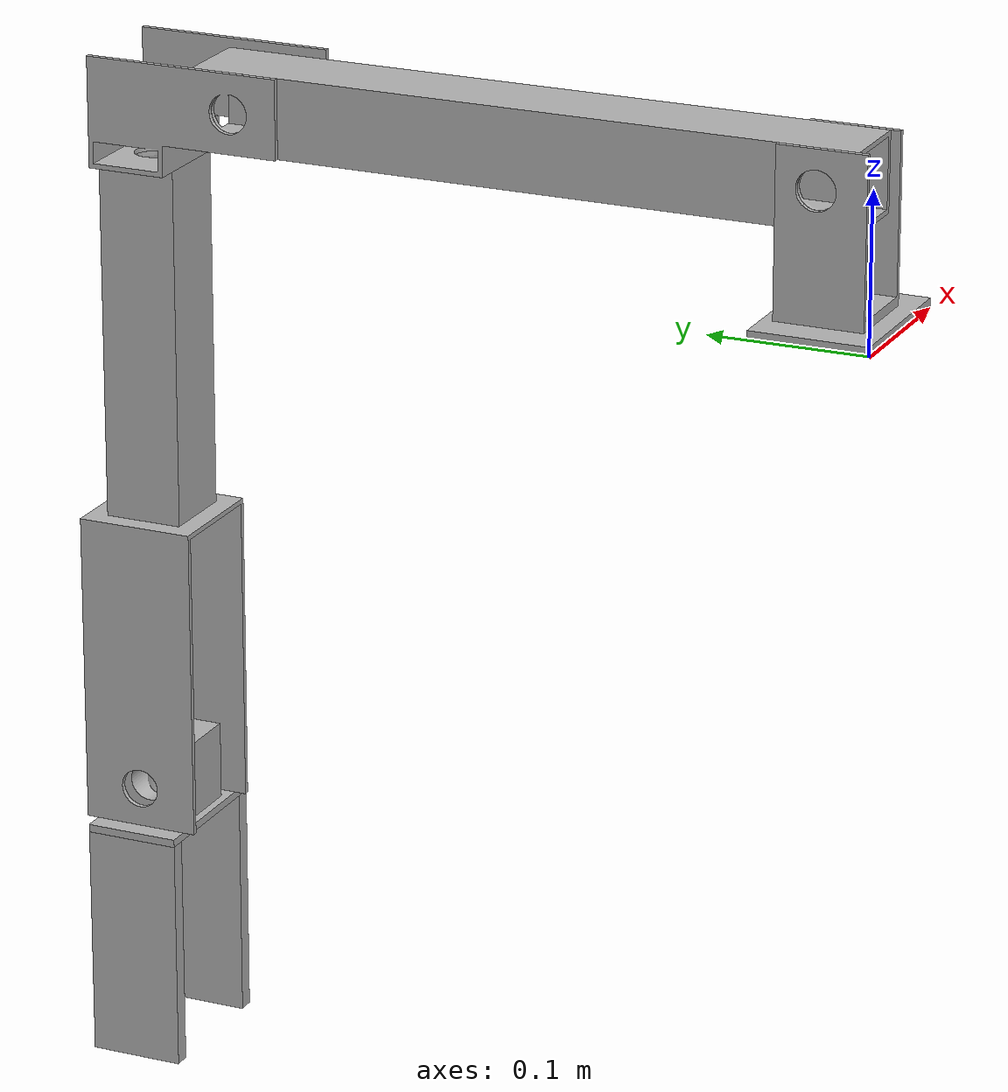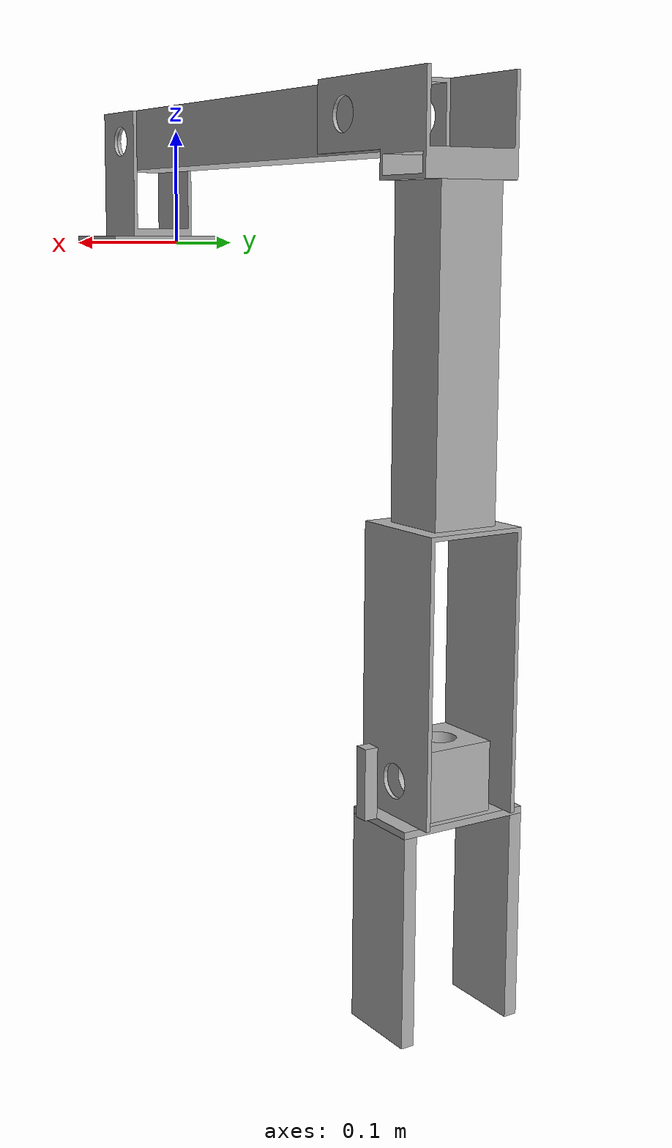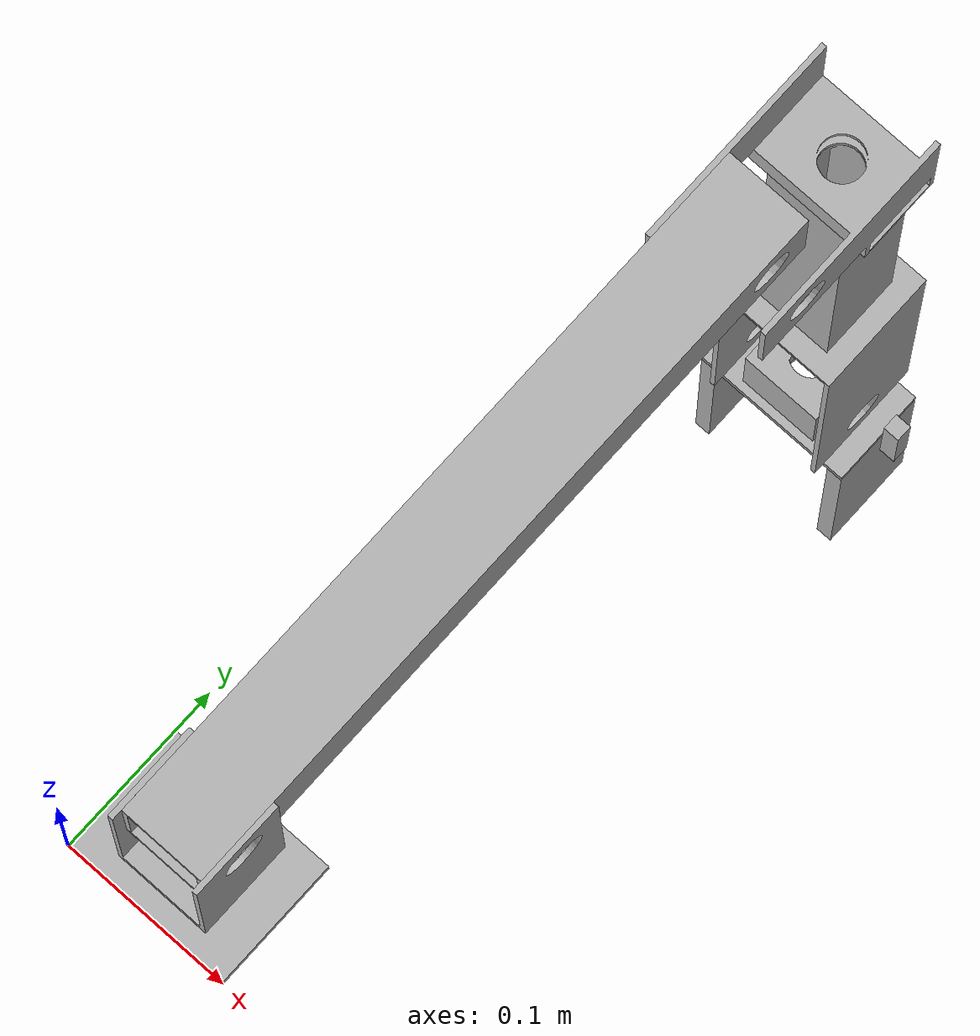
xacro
<?xml version="1.0" ?>
<robot name="bruh_with_EE" xmlns:xacro="http://www.ros.org/wiki/xacro">

<xacro:include filename="$(find rover)/rover/simulation/urdfs/bruh_with_EE_info/materials.xacro" />
<xacro:include filename="$(find rover)/rover/simulation/urdfs/bruh_with_EE_info/bruh_with_EE.gazebo" />
<link name="base_link">
  <inertial>
    <origin xyz="0.049999999999908465 0.03732491617294113 0.003125" rpy="0 0 0"/>
    <mass value="0.3438852516301944"/>
    <inertia ixx="0.000173" iyy="0.000307" izz="0.000477" ixy="0.0" iyz="0.0" ixz="0.0"/>
  </inertial>
  <visual>
    <origin xyz="0 0 0" rpy="0 0 0"/>
    <geometry>
      <mesh filename="package://rover/rover/simulation/meshes/BRUH_EE/base_link.stl" scale="0.001 0.001 0.001"/>
    </geometry>
    <material name="silver"/>
  </visual>
  <collision>
    <origin xyz="0 0 0" rpy="0 0 0"/>
    <geometry>
      <mesh filename="package://rover/rover/simulation/meshes/BRUH_EE/base_link.stl" scale="0.001 0.001 0.001"/>
    </geometry>
  </collision>
</link>

<link name="Link_2">
  <inertial>
    <origin xyz="0.02500000000000001 -3.469446951953614e-17 0.18750000000000036" rpy="0 0 0"/>
    <mass value="1.9066669876353899"/>
    <inertia ixx="0.028446" iyy="0.028422" izz="0.00141" ixy="0.0" iyz="0.0" ixz="0.0"/>
  </inertial>
  <visual>
    <origin xyz="-0.025 -0.043125 -0.0875" rpy="0 0 0"/>
    <geometry>
      <mesh filename="package://rover/rover/simulation/meshes/BRUH_EE/Link_2_1.stl" scale="0.001 0.001 0.001"/>
    </geometry>
    <material name="silver"/>
  </visual>
  <collision>
    <origin xyz="-0.025 -0.043125 -0.0875" rpy="0 0 0"/>
    <geometry>
      <mesh filename="package://rover/rover/simulation/meshes/BRUH_EE/Link_2_1.stl" scale="0.001 0.001 0.001"/>
    </geometry>
  </collision>
</link>

<link name="Link_3">
  <inertial>
    <origin xyz="0.03430362109974345 -0.04944582134444816 0.014912670037228792" rpy="0 0 0"/>
    <mass value="0.4940349563853918"/>
    <inertia ixx="0.000813" iyy="0.000699" izz="0.001065" ixy="2e-06" iyz="0.000148" ixz="-1e-06"/>
  </inertial>
  <visual>
    <origin xyz="-0.025 -0.043125 -0.4625" rpy="0 0 0"/>
    <geometry>
      <mesh filename="package://rover/rover/simulation/meshes/BRUH_EE/Link_3_1.stl" scale="0.001 0.001 0.001"/>
    </geometry>
    <material name="silver"/>
  </visual>
  <collision>
    <origin xyz="-0.025 -0.043125 -0.4625" rpy="0 0 0"/>
    <geometry>
      <mesh filename="package://rover/rover/simulation/meshes/BRUH_EE/Link_3_1.stl" scale="0.001 0.001 0.001"/>
    </geometry>
  </collision>
</link>

<link name="Link_4">
  <inertial>
    <origin xyz="-7.868329075064878e-05 4.85722573273506e-17 0.19765089570473438" rpy="0 0 0"/>
    <mass value="1.9294963540078034"/>
    <inertia ixx="0.028758" iyy="0.028194" izz="0.002163" ixy="0.0" iyz="-0.0" ixz="-1.2e-05"/>
  </inertial>
  <visual>
    <origin xyz="-0.059375 0.026425 -0.5075" rpy="0 0 0"/>
    <geometry>
      <mesh filename="package://rover/rover/simulation/meshes/BRUH_EE/Link_4_1.stl" scale="0.001 0.001 0.001"/>
    </geometry>
    <material name="silver"/>
  </visual>
  <collision>
    <origin xyz="-0.059375 0.026425 -0.5075" rpy="0 0 0"/>
    <geometry>
      <mesh filename="package://rover/rover/simulation/meshes/BRUH_EE/Link_4_1.stl" scale="0.001 0.001 0.001"/>
    </geometry>
  </collision>
</link>

<link name="Link_5">
  <inertial>
    <origin xyz="-0.00732499999999995 0.029675000000000396 5.551115123125783e-16" rpy="0 0 0"/>
    <mass value="0.6776848594164601"/>
    <inertia ixx="0.00032" iyy="0.000352" izz="0.000352" ixy="-0.0" iyz="0.0" ixz="0.0"/>
  </inertial>
  <visual>
    <origin xyz="-0.0667 0.0561 -0.910625" rpy="0 0 0"/>
    <geometry>
      <mesh filename="package://rover/rover/simulation/meshes/BRUH_EE/Link_5_1.stl" scale="0.001 0.001 0.001"/>
    </geometry>
    <material name="silver"/>
  </visual>
  <collision>
    <origin xyz="-0.0667 0.0561 -0.910625" rpy="0 0 0"/>
    <geometry>
      <mesh filename="package://rover/rover/simulation/meshes/BRUH_EE/Link_5_1.stl" scale="0.001 0.001 0.001"/>
    </geometry>
  </collision>
</link>

<link name="Link_1"> <!-- turntable -->
  <inertial>
    <origin xyz="-8.21703816100694e-14 -0.00019647994583754658 0.036488404975619185" rpy="0 0 0"/>
    <mass value="0.3830463821666405"/>
    <inertia ixx="0.000547" iyy="0.000653" izz="0.000329" ixy="0.0" iyz="3e-06" ixz="-0.0"/>
  </inertial>
  <visual>
    <origin xyz="-0.05 -0.04 -0.00625" rpy="0 0 0"/>
    <geometry>
      <mesh filename="package://rover/rover/simulation/meshes/BRUH_EE/Link_1_1.stl" scale="0.001 0.001 0.001"/>
    </geometry>
    <material name="silver"/>
  </visual>
  <collision>
    <origin xyz="-0.05 -0.04 -0.00625" rpy="0 0 0"/>
    <geometry>
      <mesh filename="package://rover/rover/simulation/meshes/BRUH_EE/Link_1_1.stl" scale="0.001 0.001 0.001"/>
    </geometry>
  </collision>
</link>

<link name="Link_6">
  <inertial>
    <origin xyz="1.1650402864660236e-13 3.920475055707584e-16 0.002500000000000502" rpy="0 0 0"/>
    <mass value="0.2162332013041555"/>
    <inertia ixx="0.000196" iyy="7e-05" izz="0.000265" ixy="-0.0" iyz="0.0" ixz="0.0"/>
  </inertial>
  <visual>
    <origin xyz="-0.059375 0.026425 -0.935625" rpy="0 0 0"/>
    <geometry>
      <mesh filename="package://rover/rover/simulation/meshes/BRUH_EE/Link_6_1.stl" scale="0.001 0.001 0.001"/>
    </geometry>
    <material name="silver"/>
  </visual>
  <collision>
    <origin xyz="-0.059375 0.026425 -0.935625" rpy="0 0 0"/>
    <geometry>
      <mesh filename="package://rover/rover/simulation/meshes/BRUH_EE/Link_6_1.stl" scale="0.001 0.001 0.001"/>
    </geometry>
  </collision>
</link>

<link name="Link_8">
  <inertial>
    <origin xyz="-0.029999999999999957 0.005000000000000393 0.07500000000000062" rpy="0 0 0"/>
    <mass value="0.7064999999999999"/>
    <inertia ixx="0.001331" iyy="0.001537" izz="0.000218" ixy="0.0" iyz="0.0" ixz="0.0"/>
  </inertial>
  <visual>
    <origin xyz="-0.089375 0.076425 -0.940625" rpy="0 0 0"/>
    <geometry>
      <mesh filename="package://rover/rover/simulation/meshes/BRUH_EE/Link_8_1.stl" scale="0.001 0.001 0.001"/>
    </geometry>
    <material name="silver"/>
  </visual>
  <collision>
    <origin xyz="-0.089375 0.076425 -0.940625" rpy="0 0 0"/>
    <geometry>
      <mesh filename="package://rover/rover/simulation/meshes/BRUH_EE/Link_8_1.stl" scale="0.001 0.001 0.001"/>
    </geometry>
  </collision>
</link>

<link name="Link_7">
  <inertial>
    <origin xyz="0.03000000000000004 -0.004999999999999619 0.0750000000000004" rpy="0 0 0"/>
    <mass value="0.7064999999999998"/>
    <inertia ixx="0.001331" iyy="0.001537" izz="0.000218" ixy="0.0" iyz="-0.0" ixz="-0.0"/>
  </inertial>
  <visual>
    <origin xyz="-0.029375 -0.023575 -0.940625" rpy="0 0 0"/>
    <geometry>
      <mesh filename="package://rover/rover/simulation/meshes/BRUH_EE/Link_7_1.stl" scale="0.001 0.001 0.001"/>
    </geometry>
    <material name="silver"/>
  </visual>
  <collision>
    <origin xyz="-0.029375 -0.023575 -0.940625" rpy="0 0 0"/>
    <geometry>
      <mesh filename="package://rover/rover/simulation/meshes/BRUH_EE/Link_7_1.stl" scale="0.001 0.001 0.001"/>
    </geometry>
  </collision>
</link>

<joint name="Joint_1" type="continuous">
  <origin xyz="0.05 0.04 0.00625" rpy="0 0 0"/>
  <parent link="base_link"/>
  <child link="Link_1"/>
  <axis xyz="0.0 0.0 1.0"/>
</joint>

<joint name="Joint_2" type="continuous">
  <origin xyz="-0.025 0.003125 0.08125" rpy="-1.57 0 0"/>
  <parent link="Link_1"/>
  <child link="Link_2"/>
  <axis xyz="1.0 0.0 -0.0"/>
</joint>

<joint name="Joint_3" type="continuous">
  <origin xyz="0.0 0.0 0.375" rpy="-1.57 0 0"/>
  <parent link="Link_2"/>
  <child link="Link_3"/>
  <axis xyz="1.0 -0.0 0.0"/>
</joint>

<joint name="Joint_4" type="continuous">
  <origin xyz="0.034375 -0.06955 0.045" rpy="0 0 -1.57"/>
  <parent link="Link_3"/>
  <child link="Link_4"/>
  <axis xyz="0.0 0.0 1.0"/>
</joint>

<joint name="Joint_5" type="continuous">
  <origin xyz="0.007325 -0.029675 0.403125" rpy="0 0 0"/>
  <parent link="Link_4"/>
  <child link="Link_5"/>
  <axis xyz="-0.0 1.0 -0.0"/>
</joint>

<joint name="Joint_6" type="continuous">
  <origin xyz="-0.007325 0.029675 0.025" rpy="0 0 0"/>
  <parent link="Link_5"/>
  <child link="Link_6"/>
  <axis xyz="-0.0 0.0 1.0"/>
</joint>

<joint name="Joint_7" type="prismatic">
  <origin xyz="0.03 -0.05 0.005" rpy="0 0 0"/>
  <parent link="Link_6"/>
  <child link="Link_8"/>
  <axis xyz="0.0 -1.0 0.0"/>
  <limit upper="0.0" lower="-0.04" effort="100" velocity="100"/>
</joint>

<joint name="Joint_8" type="prismatic">
  <origin xyz="-0.03 0.05 0.005" rpy="0 0 0"/>
  <parent link="Link_6"/>
  <child link="Link_7"/>
  <axis xyz="0.0 1.0 0.0"/>
  <limit upper="0.0" lower="-0.04" effort="100" velocity="100"/>
</joint>

<link name="camera_link">
  <visual>
    <geometry>
      <box size="0.01 0.01 0.05"/>
    </geometry>
    <material name="silver"/>
  </visual>
</link>

<joint name="camera_joint" type="fixed">
  <parent link="Link_4"/>
  <child link="camera_link"/>
  <origin xyz="0 0.06 0.4" rpy="0 0 0"/> <!--red green blue-->
</joint>

</robot>

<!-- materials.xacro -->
<robot name="bruh_with_EE" xmlns:xacro="http://www.ros.org/wiki/xacro" >

<material name="silver">
  <color rgba="0.700 0.700 0.700 1.000"/>
</material>

</robot>

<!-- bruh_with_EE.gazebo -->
<robot name="bruh_with_EE" xmlns:xacro="http://www.ros.org/wiki/xacro" >

<xacro:property name="body_color" value="Gazebo/Silver" />

<gazebo>
  <plugin name="control" filename="libgazebo_ros_control.so"/>
</gazebo>
<gazebo reference="base_link">
  <material>${body_color}</material>
  <mu1>0.2</mu1>
  <mu2>0.2</mu2>
  <selfCollide>true</selfCollide>
  <gravity>true</gravity>
</gazebo>

<gazebo reference="Link_2_1">
  <material>${body_color}</material>
  <mu1>0.2</mu1>
  <mu2>0.2</mu2>
  <selfCollide>true</selfCollide>
</gazebo>

<gazebo reference="Link_3_1">
  <material>${body_color}</material>
  <mu1>0.2</mu1>
  <mu2>0.2</mu2>
  <selfCollide>true</selfCollide>
</gazebo>

<gazebo reference="Link_4_1">
  <material>${body_color}</material>
  <mu1>0.2</mu1>
  <mu2>0.2</mu2>
  <selfCollide>true</selfCollide>
</gazebo>

<gazebo reference="Link_5_1">
  <material>${body_color}</material>
  <mu1>0.2</mu1>
  <mu2>0.2</mu2>
  <selfCollide>true</selfCollide>
</gazebo>

<gazebo reference="Link_1_1">
  <material>${body_color}</material>
  <mu1>0.2</mu1>
  <mu2>0.2</mu2>
  <selfCollide>true</selfCollide>
</gazebo>

<gazebo reference="Link_6_1">
  <material>${body_color}</material>
  <mu1>0.2</mu1>
  <mu2>0.2</mu2>
  <selfCollide>true</selfCollide>
</gazebo>

<gazebo reference="Link_8">
  <material>${body_color}</material>
  <mu1>0.2</mu1>
  <mu2>0.2</mu2>
  <selfCollide>true</selfCollide>
</gazebo>

<gazebo reference="Link_7">
  <material>${body_color}</material>
  <mu1>0.2</mu1>
  <mu2>0.2</mu2>
  <selfCollide>true</selfCollide>
</gazebo>

</robot>
